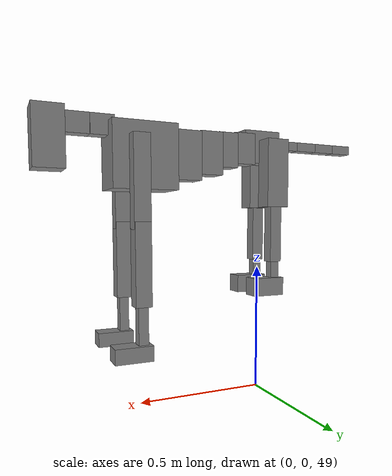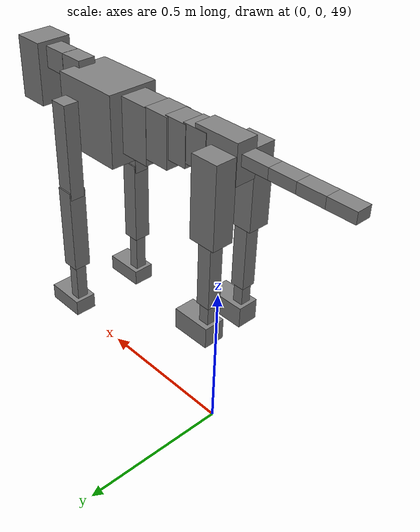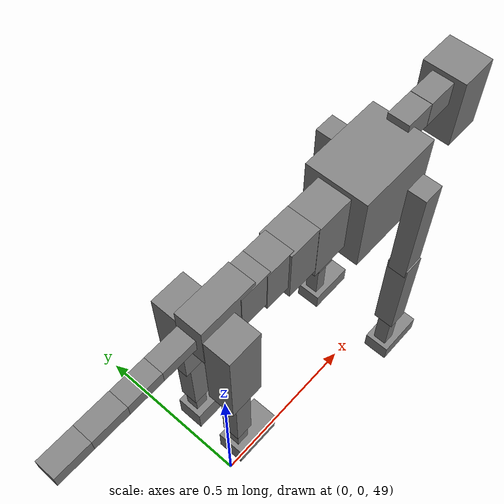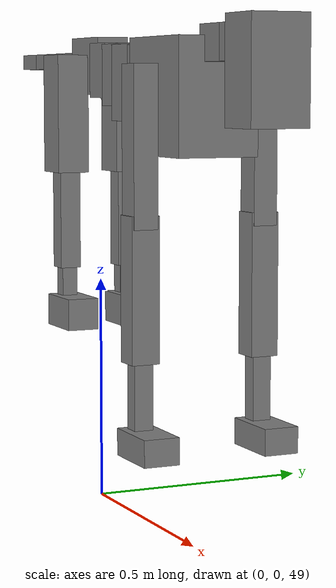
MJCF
<mujoco model="dog">

    <default>
        <joint armature="0.02" stiffness="1" damping="0.2" limited="true"/>
        <geom condim="3" friction="1 0.05 0.05" margin="0.01"/>
        <motor ctrllimited="true" ctrlrange="-1.0 1.0" forcelimited="true" gear="50"/>
    </default>

    <compiler inertiafromgeom="true" angle="radian"/>

    <option timestep="0.016" iterations="50" tolerance="1e-10" solver="Newton" jacobian="dense" cone="pyramidal"/>

    <size nconmax="20000" njmax="60000" nstack="5000000"/>
    <visual>
        <map force="0.1" zfar="30"/>
        <rgba haze="0.15 0.25 0.35 1"/>
        <quality shadowsize="2048"/>
        <global offwidth="800" offheight="800"/>
    </visual>

    <asset>
        <texture type="skybox" builtin="gradient" rgb1="0.3 0.5 0.7" rgb2="0 0 0" width="512" height="512"/>
        <texture name="texplane" type="2d" builtin="checker" rgb1=".2 .3 .4" rgb2=".1 0.15 0.2" width="512" height="512"
                 mark="cross" markrgb=".8 .8 .8"/>
        <texture name="texgeom" type="cube" builtin="flat" mark="cross" width="127" height="1278" rgb1="0.8 0.6 0.4"
                 rgb2="0.8 0.6 0.4" markrgb="1 1 1" random="0.01"/>

        <material name="matplane" reflectance="0.3" texture="texplane" texrepeat="1 1" texuniform="true"/>
        <material name="matgeom" texture="texgeom" texuniform="true" rgba="0.8 0.6 .4 1"/>
    </asset>

    <worldbody>
        <geom name="floor" pos="0 0 0" size="0 0 .25" type="plane" material="matplane" condim="3"/>

        <light directional="false" diffuse=".2 .2 .2" specular="0 0 0" pos="0 0 5" dir="0 0 -1" castshadow="false"/>
        <light mode="targetbodycom" target="torso" directional="false" diffuse=".8 .8 .8" specular="0.3 0.3 0.3"
               pos="0 0 4.0" dir="0 0 -1"/>

        <body name="root" pos="0 0 50">
            <freejoint name="root_1"/>
            <geom type="box" pos="0 0 -0.02" size="0.0774  0.0358  0.063" density="2030"/>

            <body name="spine1" pos="0.054 0 0">
                <joint name="spine1_y" axis="0 1 0" range="0 0.7" limited="true"/>
                <geom type="box" pos="0.02375 0 -0.03" size="0.04375  0.0375  0.05985" density="2030"/>

                <body name="spine2" pos="0.0612 0 0">
                    <joint name="spine2_y" axis="0 1 0" range="-0.15 0.15" limited="true"/>
                    <geom type="box" pos="0.03555  0  -0.04" size="0.04055  0.039  0.06615" density="2030"/>

                    <body name="spine3" pos="0.0730 0 0">
                        <joint name="spine3_y" axis="0 1 0" range="-0.15 0.15" limited="true"/>
                        <geom type="box" pos="0.03555  0  -0.057" size="0.04555  0.0445  0.081" density="2030"/>

                        <body name="spine4" pos="0.0780 0 0">
                            <joint name="spine4_y" axis="0 1 0" range="-0.15 0.15" limited="true"/>
                            <geom type="box" pos="0.05265  0  -0.07" size="0.05265  0.045  0.09135" density="2030"/>

                            <body name="torso" pos="0.1082 0 0">
                                <joint name="torso_y" axis="0 1 0" range="-0.15 0.15" limited="true"/>
                                <geom type="box" pos="0.11925  0  -0.085" size="0.11925  0.085  0.11745"
                                      density="2030"/>

                                <body name="neck1" pos="0.2160  0   0.0180">
                                    <joint name="neck1_y" axis="0 1 0" range="-1.2  -1" limited="true"/>
                                    <geom type="box" pos="0.0423  0  0" size="0.0423  0.03  0.036" density="2325"/>

                                    <body name="neck2" pos="0.0853  0  0">
                                        <joint name="neck2_y" axis="0 1 0" range="0.1  0" limited="true"/>
                                        <geom type="box" pos="0.0423  0  0" size="0.0423  0.03  0.036" density="2325"/>

                                        <body name="head" pos="0.0853  0  0">
                                            <joint name="head_y" axis="0 1 0" range="-0.3  -0.2" limited="true"/>
                                            <geom type="box" pos="0.0531  0  -0.055" size="0.0531  0.06  0.1044"
                                                  density="4030"/>

                                        </body>
                                    </body>
                                </body>

                                <body name="front_shoulder" pos="0.156  0   -0.0480">
                                    <joint name="front_shoulder_y" axis="0 1 0" range="-1 1.5" limited="true"/>
                                    <geom type="box" pos="0 0.13 -0.1337" size="0.0297  0.0254  0.1603" density="1158"/>
                                    <geom type="box" pos="0 -0.13 -0.1337" size="0.0297  0.0254  0.1603"
                                          density="1158"/>

                                    <body name="front_elbow" pos="0  0  -0.2674">
                                        <joint name="front_elbow_y" axis="0 1 0" range="-2 0" limited="true"/>
                                        <geom type="box" pos="0 0.13 -0.1457" size="0.0287  0.0293  0.1457"
                                              density="1081"/>
                                        <geom type="box" pos="0 -0.13 -0.1457" size="0.0287  0.0293  0.1457"
                                              density="1081"/>

                                        <body name="front_wrist" pos="0  0  -0.2913">
                                            <joint name="front_wrist_y" axis="0 1 0" range="-0.2 0" limited="true"/>
                                            <geom type="box" pos="0 0.13 -0.0738" size="0.0177  0.0197  0.0870"
                                                  density="1664"/>
                                            <geom type="box" pos="0 -0.13 -0.0738" size="0.0177  0.0197  0.0870"
                                                  density="1664"/>

                                            <body name="front_finger_end" pos="0  0  -0.1476">
                                                <joint name="front_finger_y" axis="0 1 0" range="-0.4 1"
                                                       limited="true"/>
                                                <geom type="box" pos="0.0369  0.13  -0.0122"
                                                      size="0.0676  0.0369  0.0272" density="1515"/>
                                                <geom type="box" pos="0.0369  -0.13  -0.0122"
                                                      size="0.0676  0.0369  0.0272" density="1515"/>

                                            </body>

                                        </body>
                                    </body>
                                </body>

                            </body>
                        </body>
                    </body>
                </body>
            </body>

            <body name="back_hip" pos="-0.03 0 -0.018">
                <joint name="back_hip_y" axis="0 1 0" range="-1.5 0.3" limited="true"/>
                <geom type="box" pos="0 0.07 -0.1078" size="0.0457  0.0359  0.1306" density="1154"/>
                <geom type="box" pos="0 -0.07 -0.1078" size="0.0457  0.0359  0.1306" density="1154"/>

                <body name="back_knee" pos="0  0  -0.2156">
                    <joint name="back_knee_y" axis="0 1 0" range="0 2.8" limited="true"/>
                    <geom type="box" pos="0 0.07 -0.1115" size="0.0236  0.0233  0.1270" density="1227"/>
                    <geom type="box" pos="0 -0.07 -0.1115" size="0.0236  0.0233  0.1270" density="1227"/>

                    <body name="back_ankle" pos="0  0  -0.2230">
                        <joint name="back_ankle_y" axis="0 1 0" range="-2.2 0" limited="true"/>
                        <geom type="box" pos="0 0.07 -0.0468" size="0.0172  0.0172  0.0580" density="1284"/>
                        <geom type="box" pos="0 -0.07 -0.0468" size="0.0172  0.0172  0.0580" density="1284"/>

                        <body name="back_toe_end" pos="0  0  -0.0935">
                            <joint name="back_toe_y" axis="0 1 0" range="-0.4 1" limited="true"/>
                            <geom type="box" pos="0.0351  0.07  -0.0198" size="0.0643  0.0351  0.0348" density="1515"/>
                            <geom type="box" pos="0.0351  -0.07  -0.0198" size="0.0643  0.0351  0.0348" density="1515"/>

                        </body>
                    </body>
                </body>
            </body>

            <body name="tail1" pos="-0.074 0 -0.006">
                <joint name="tail1_y" axis="0 1 0" range="-0.2 0.2" limited="true"/>
                <geom type="box" pos="-0.0536  0  0" size="0.045  0.025  0.0175" density="1587"/>

                <body name="tail2" pos="-0.09 0 0">
                    <joint name="tail2_y" axis="0 1 0" range="-0.2 0.2" limited="true"/>
                    <geom type="box" pos="-0.0536  0  0" size="0.045  0.025  0.0175" density="1587"/>

                    <body name="tail3" pos="-0.09 0 0">
                        <joint name="tail3_y" axis="0 1 0" range="-0.2 0.2" limited="true"/>
                        <geom type="box" pos="-0.0536  0  0" size="0.045  0.025  0.0175" density="1587"/>

                        <body name="tail4" pos="-0.09 0 0">
                            <joint name="tail4_y" axis="0 1 0" range="-0.2 0.2" limited="true"/>
                            <geom type="box" pos="-0.0536  0  0" size="0.045  0.025  0.0175" density="1587"/>

                        </body>
                    </body>
                </body>
            </body>
        </body>
    </worldbody>

    <actuator>
        <motor joint="spine1_y" forcerange="-150 150     "/>
        <motor joint="spine2_y" forcerange="-150 150     "/>
        <motor joint="spine3_y" forcerange="-150 150     "/>
        <motor joint="spine4_y" forcerange="-150 150     "/>
        <motor joint="torso_y" forcerange="-150 150     "/>
        <motor joint="neck1_y" forcerange="-100 100       "/>
        <motor joint="neck2_y" forcerange="-100 100       "/>
        <motor joint="head_y" forcerange="-150 150       "/>
        <motor joint="front_shoulder_y" forcerange="-123.03 146.33"/>
        <motor joint="front_elbow_y" forcerange="-154.08 159.06"/>
        <motor joint="front_wrist_y" forcerange="-64.50 93.09"/>
        <motor joint="front_finger_y" forcerange="-78.79 77.92"/>
        <motor joint="back_hip_y" forcerange="-396.73 281.45"/>
        <motor joint="back_knee_y" forcerange="-239.49 299.49"/>
        <motor joint="back_angle_y" forcerange="-62.52 113.05"/>
        <motor joint="back_toe_y" forcerange="-98.13 102.55"/>
        <motor joint="tail1_y" forcerange="-50 50     "/>
        <motor joint="tail2_y" forcerange="-50 50     "/>
        <motor joint="tail3_y" forcerange="-50 50     "/>
        <motor joint="tail4_y" forcerange="-50 50     "/>
    </actuator>
</mujoco>
